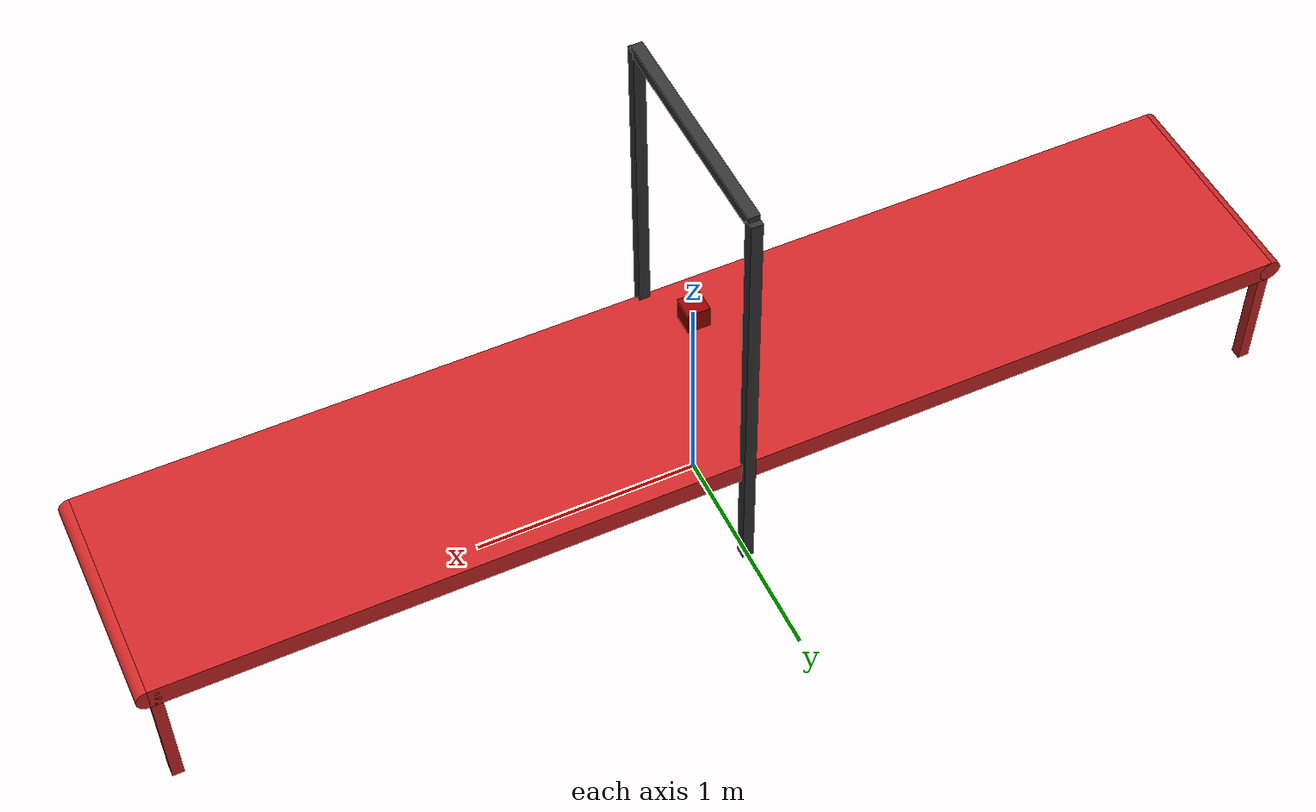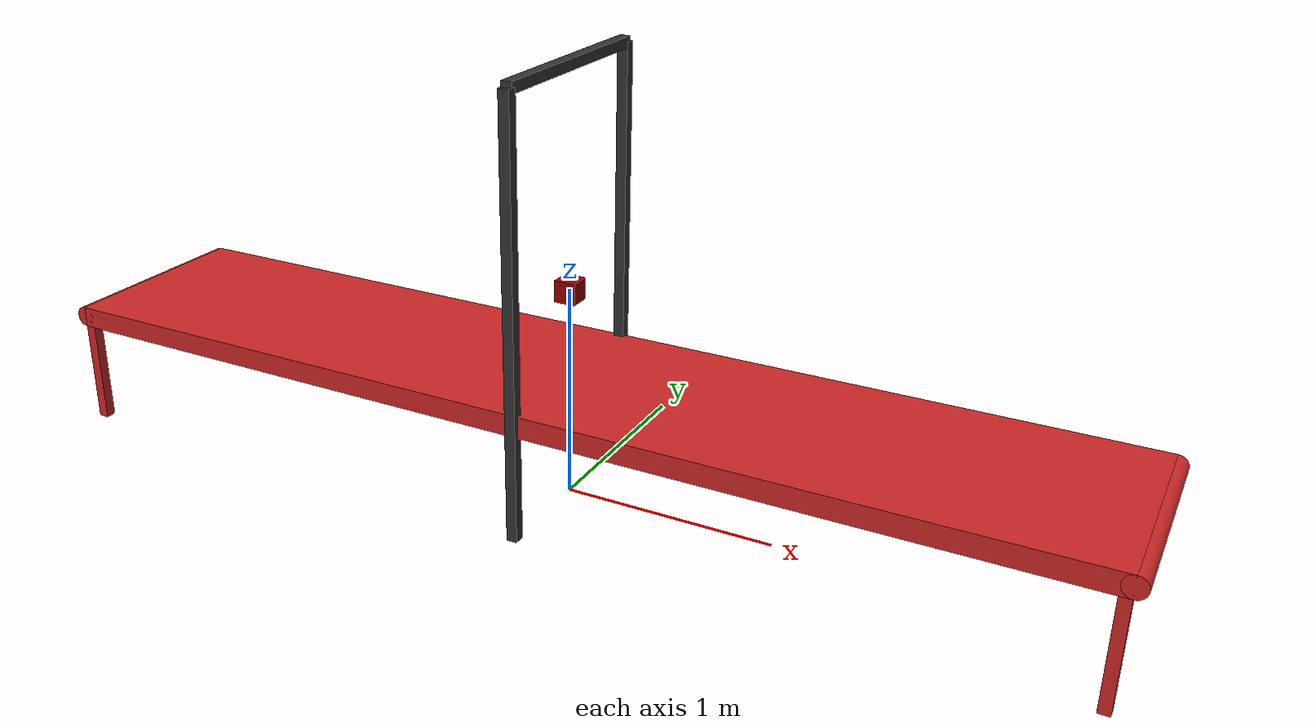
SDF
<sdf version="1.7">
 <world name="default">
  <physics name="4ms" type="ignored">
   <max_step_size>0.004</max_step_size>
   <real_time_factor>1.0</real_time_factor>
  </physics>
  <plugin filename="gz-sim-physics-system" name="gz::sim::systems::Physics"/>
  <plugin filename="gz-sim-sensors-system" name="gz::sim::systems::Sensors">
   <render_engine>ogre</render_engine>
  </plugin>
  <plugin filename="gz-sim-user-commands-system" name="gz::sim::systems::UserCommands"/>
  <plugin filename="gz-sim-scene-broadcaster-system" name="gz::sim::systems::SceneBroadcaster"/>
  <scene><ambient>1.0 1.0 1.0</ambient><background>0.8 0.8 0.8</background></scene>
  <light type="directional" name="sun">
   <pose>0 0 10 0 0 0</pose>
   <diffuse>0.8 0.8 0.8 1</diffuse>
   <specular>0.8 0.8 0.8 1</specular>
   <attenuation>
    <range>1000</range>
    <constant>0.9</constant>
    <linear>0.01</linear>
    <quadratic>0.001</quadratic>
   </attenuation>
   <direction>-0.5 0.1 -0.9</direction>
  </light>
  <include><uri>model://textured_conveyor</uri></include>
  <include><uri>model://simple_conveyor_box</uri><pose>0 0 1.0 0 0 0</pose></include>
  <include>
   <uri>model://bracket</uri>
   <name>bracket</name>
   <pose>0 0 0.0 0 0 1.5707963267948966</pose>
   <static>true</static>
  </include>
  <joint name="bracket_camera_joint" type="fixed">
   <parent>bracket::horizontal_bar</parent>
   <child>realsense_d435::link</child>
  </joint>
  <joint name="bracket_lidar_joint" type="fixed">
   <parent>bracket::horizontal_bar</parent>
   <child>lidar_3d::link</child>
  </joint>
 </world>
</sdf>

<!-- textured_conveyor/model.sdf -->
<?xml version="1.0" ?>
<sdf version="1.7">
  <model name="textured_conveyor">
    <static>1</static>
    <link name="base_link">
      <pose relative_to="__model__">0 0 0 0 0 0</pose>
      <inertial>
        <mass>1000.0</mass>
        <inertia>
          <ixx>84.16666666666666</ixx>
          <ixy>0</ixy>
          <ixz>0</ixz>
          <iyy>2084.1666666666665</iyy>
          <iyz>1.5e-05</iyz>
          <izz>2166.6666666666665</izz>
        </inertia>
      </inertial>
      <collision name="main_collision">
        <pose relative_to="base_link">0 0 0.55 0 0 0</pose>
        <geometry>
          <box>
            <size>5.0 1.0 0.1</size>
          </box>
        </geometry>
        <surface>
          <friction>
            <ode>
              <mu>0.7</mu>
              <mu2>150</mu2>
              <fdir1>0 1 0</fdir1>
            </ode>
          </friction>
        </surface>
      </collision>
      <visual name="main_visual">
        <pose relative_to="base_link">0 0 0.55 0 0 0</pose>
        <geometry>
          <box>
            <size>5.0 1.0 0.1</size>
          </box>
        </geometry>
        <material>
          <diffuse>1.0 1.0 1.0</diffuse>
          <specular>1.0 1.0 1.0</specular>
          <pbr>
            <metal>
              <albedo_map>model://textured_conveyor/materials/textures/Leather032_1K-PNG_Color.png</albedo_map>
              <normal_map>model://textured_conveyor/materials/textures/Leather032_1K-PNG_NormalDX.png</normal_map>
              <metalness_map>model://textured_conveyor/materials/textures/Leather032_1K-PNG_Color.png</metalness_map>
              <roughness_map>model://textured_conveyor/materials/textures/Leather032_1K-PNG_Roughness.png</roughness_map>
            </metal>
          </pbr>
          <script>
            <uri>model://textured_conveyor/materials/scripts/</uri>
            <uri>model://textured_conveyor/materials/textures/</uri>
            <name>UrbanTile/textured_conveyor_Belt</name>
          </script>
        </material>
      </visual>
      <collision name="collision_1">
        <pose relative_to="base_link">2.5 0 0.55 -1.570796327 0 0</pose>
        <geometry>
          <cylinder>
            <length>1.0</length>
            <radius>0.05</radius>
          </cylinder>
        </geometry>
        <surface>
          <friction>
            <ode>
              <mu>0.7</mu>
              <mu2>150</mu2>
              <fdir1>0 1 0</fdir1>
            </ode>
          </friction>
        </surface>
      </collision>
      <visual name="visual_1">
        <pose relative_to="base_link">2.5 0 0.55 -1.570796327 0 0</pose>
        <geometry>
          <cylinder>
            <length>1.0</length>
            <radius>0.05</radius>
          </cylinder>
        </geometry>
        <material>
          <diffuse>1.0 1.0 1.0</diffuse>
          <specular>1.0 1.0 1.0</specular>
          <pbr>
            <metal>
              <albedo_map>model://textured_conveyor/materials/textures/Metal055A_1K-PNG_Color.png</albedo_map>
              <metalness_map>model://textured_conveyor/materials/textures/Metal055A_1K-PNG_Color.png</metalness_map>
              <roughness_map>model://textured_conveyor/materials/textures/Metal055A_1K-PNG_Roughness.png</roughness_map>
            </metal>
          </pbr>
          <script>
            <uri>model://textured_conveyor/materials/scripts/</uri>
            <uri>model://textured_conveyor/materials/textures/</uri>
            <name>UrbanTile/textured_conveyor_Roller</name>
          </script>
        </material>
      </visual>
      <collision name="collision_2">
        <pose relative_to="base_link">-2.5 0 0.55 -1.570796327 0 0</pose>
        <geometry>
          <cylinder>
            <length>1.0</length>
            <radius>0.05</radius>
          </cylinder>
        </geometry>
        <surface>
          <friction>
            <ode>
              <mu>0.7</mu>
              <mu2>150</mu2>
              <fdir1>0 1 0</fdir1>
            </ode>
          </friction>
        </surface>
      </collision>
      <visual name="visual_2">
        <pose relative_to="base_link">-2.5 0 0.55 -1.570796327 0 0</pose>
        <geometry>
          <cylinder>
            <length>1.0</length>
            <radius>0.05</radius>
          </cylinder>
        </geometry>
        <material>
          <diffuse>1.0 1.0 1.0</diffuse>
          <specular>1.0 1.0 1.0</specular>
          <pbr>
            <metal>
              <albedo_map>model://textured_conveyor/materials/textures/Metal055A_1K-PNG_Color.png</albedo_map>
              <metalness_map>model://textured_conveyor/materials/textures/Metal055A_1K-PNG_Color.png</metalness_map>
              <roughness_map>model://textured_conveyor/materials/textures/Metal055A_1K-PNG_Roughness.png</roughness_map>
            </metal>
          </pbr>
          <script>
            <uri>model://textured_conveyor/materials/scripts/</uri>
            <uri>model://textured_conveyor/materials/textures/</uri>
            <name>UrbanTile/textured_conveyor_Roller</name>
          </script>
        </material>
      </visual>
      <collision name="leg_collision_0">
        <pose relative_to="base_link">2.475 0.475 0.25 0 0 0</pose>
        <geometry>
          <box>
            <size>0.05 0.05 0.5</size>
          </box>
        </geometry>
      </collision>
      <visual name="leg_visual_0">
        <pose relative_to="base_link">2.475 0.475 0.25 0 0 0</pose>
        <geometry>
          <box>
            <size>0.05 0.05 0.5</size>
          </box>
        </geometry>
        <material>
          <diffuse>1.0 1.0 1.0</diffuse>
          <specular>1.0 1.0 1.0</specular>
          <pbr>
            <metal>
              <albedo_map>model://textured_conveyor/materials/textures/Metal055A_1K-PNG_Color.png</albedo_map>
              <metalness_map>model://textured_conveyor/materials/textures/Metal055A_1K-PNG_Color.png</metalness_map>
              <roughness_map>model://textured_conveyor/materials/textures/Metal055A_1K-PNG_Roughness.png</roughness_map>
            </metal>
          </pbr>
          <script>
            <uri>model://textured_conveyor/materials/scripts/</uri>
            <uri>model://textured_conveyor/materials/textures/</uri>
            <name>UrbanTile/textured_conveyor_Leg</name>
          </script>
        </material>
      </visual>
      <collision name="leg_collision_1">
        <pose relative_to="base_link">2.475 -0.475 0.25 0 0 0</pose>
        <geometry>
          <box>
            <size>0.05 0.05 0.5</size>
          </box>
        </geometry>
      </collision>
      <visual name="leg_visual_1">
        <pose relative_to="base_link">2.475 -0.475 0.25 0 0 0</pose>
        <geometry>
          <box>
            <size>0.05 0.05 0.5</size>
          </box>
        </geometry>
        <material>
          <diffuse>1.0 1.0 1.0</diffuse>
          <specular>1.0 1.0 1.0</specular>
          <pbr>
            <metal>
              <albedo_map>model://textured_conveyor/materials/textures/Metal055A_1K-PNG_Color.png</albedo_map>
              <metalness_map>model://textured_conveyor/materials/textures/Metal055A_1K-PNG_Color.png</metalness_map>
              <roughness_map>model://textured_conveyor/materials/textures/Metal055A_1K-PNG_Roughness.png</roughness_map>
            </metal>
          </pbr>
          <script>
            <uri>model://textured_conveyor/materials/scripts/</uri>
            <uri>model://textured_conveyor/materials/textures/</uri>
            <name>UrbanTile/textured_conveyor_Leg</name>
          </script>
        </material>
      </visual>
      <collision name="leg_collision_2">
        <pose relative_to="base_link">-2.475 0.475 0.25 0 0 0</pose>
        <geometry>
          <box>
            <size>0.05 0.05 0.5</size>
          </box>
        </geometry>
      </collision>
      <visual name="leg_visual_2">
        <pose relative_to="base_link">-2.475 0.475 0.25 0 0 0</pose>
        <geometry>
          <box>
            <size>0.05 0.05 0.5</size>
          </box>
        </geometry>
        <material>
          <diffuse>1.0 1.0 1.0</diffuse>
          <specular>1.0 1.0 1.0</specular>
          <pbr>
            <metal>
              <albedo_map>model://textured_conveyor/materials/textures/Metal055A_1K-PNG_Color.png</albedo_map>
              <metalness_map>model://textured_conveyor/materials/textures/Metal055A_1K-PNG_Color.png</metalness_map>
              <roughness_map>model://textured_conveyor/materials/textures/Metal055A_1K-PNG_Roughness.png</roughness_map>
            </metal>
          </pbr>
          <script>
            <uri>model://textured_conveyor/materials/scripts/</uri>
            <uri>model://textured_conveyor/materials/textures/</uri>
            <name>UrbanTile/textured_conveyor_Leg</name>
          </script>
        </material>
      </visual>
      <collision name="leg_collision_3">
        <pose relative_to="base_link">-2.475 -0.475 0.25 0 0 0</pose>
        <geometry>
          <box>
            <size>0.05 0.05 0.5</size>
          </box>
        </geometry>
      </collision>
      <visual name="leg_visual_3">
        <pose relative_to="base_link">-2.475 -0.475 0.25 0 0 0</pose>
        <geometry>
          <box>
            <size>0.05 0.05 0.5</size>
          </box>
        </geometry>
        <material>
          <diffuse>1.0 1.0 1.0</diffuse>
          <specular>1.0 1.0 1.0</specular>
          <pbr>
            <metal>
              <albedo_map>model://textured_conveyor/materials/textures/Metal055A_1K-PNG_Color.png</albedo_map>
              <metalness_map>model://textured_conveyor/materials/textures/Metal055A_1K-PNG_Color.png</metalness_map>
              <roughness_map>model://textured_conveyor/materials/textures/Metal055A_1K-PNG_Roughness.png</roughness_map>
            </metal>
          </pbr>
          <script>
            <uri>model://textured_conveyor/materials/scripts/</uri>
            <uri>model://textured_conveyor/materials/textures/</uri>
            <name>UrbanTile/textured_conveyor_Leg</name>
          </script>
        </material>
      </visual>
      <gravity>1</gravity>
      <kinematic>0</kinematic>
    </link>

    <!-- Track Controller -->

    <!-- Documentation https://gazebosim.org/api/sim/8/classgz_1_1sim_1_1systems_1_1TrackController.html -->

    <plugin filename="gz-sim-track-controller-system" name="gz::sim::systems::TrackController">
      <link>base_link</link>
      <track_orientation>0 0 0</track_orientation>
      <odometry_publish_frequency>1</odometry_publish_frequency>
      <velocity_topic>/conveyor/cmd_vel</velocity_topic>
    </plugin>
    <plugin filename="gz-sim-triggered-publisher-system" name="gz::sim::systems::TriggeredPublisher">
      <input type="gz.msgs.Int32" topic="/keyboard/keypress">
        <match field="data">87</match>
      </input>
      <output type="gz.msgs.Double" topic="/conveyor/cmd_vel">
        data: 1.0
      </output>
    </plugin>
    <plugin filename="gz-sim-triggered-publisher-system" name="gz::sim::systems::TriggeredPublisher">
      <input type="gz.msgs.Int32" topic="/keyboard/keypress">
        <match field="data">88</match>
      </input>
      <output type="gz.msgs.Double" topic="/conveyor/cmd_vel">
        data: -1.0
      </output>
    </plugin>
    <plugin filename="gz-sim-triggered-publisher-system" name="gz::sim::systems::TriggeredPublisher">
      <input type="gz.msgs.Int32" topic="/keyboard/keypress">
        <match field="data">83</match>
      </input>
      <output type="gz.msgs.Double" topic="/conveyor/cmd_vel">
        data: 0.0
      </output>
    </plugin>
  </model>
</sdf>

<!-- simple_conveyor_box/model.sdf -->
<sdf version="1.7">
  <model name="simple_conveyor_box">
    <pose>0 0 1 0 0 0</pose>
    <link name="base_link">
      <inertial>
        <mass>1.06</mass>
        <inertia>
          <ixx>0.01</ixx>
          <ixy>0</ixy>
          <ixz>0</ixz>
          <iyy>0.01</iyy>
          <iyz>0</iyz>
          <izz>0.01</izz>
        </inertia>
      </inertial>
      <visual name="main_visual">
        <pose>0 0 0 0 0 0</pose>
        <geometry>
          <box>
            <size>0.1 0.1 0.1</size>
          </box>
        </geometry>
        <material>
          <ambient>0.60 0.0 0.0 1</ambient>
          <diffuse>0.60 0.0 0.0 1</diffuse>
          <specular>0.8 0.8 0.8 1</specular>
        </material>
      </visual>
      <collision name="main_collision">
        <pose>0 0 0 0 0 0</pose>
        <geometry>
          <box>
            <size>0.1 0.1 0.1</size>
          </box>
        </geometry>
      </collision>
    </link>
  </model>
</sdf>

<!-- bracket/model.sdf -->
<sdf version="1.7">
  <model name="bracket">
    <!-- Horizontal connecting bar (now the parent) -->
    <link name="horizontal_bar">
      <pose>0 0 2.0 0 0 0</pose>
      <visual name="horizontal_bar_visual">
        <geometry>
          <box>
            <size>1.0 0.05 0.05</size>
          </box>
        </geometry>
        <material>
          <ambient>0.1 0.1 0.1 1</ambient>
          <diffuse>0.2 0.2 0.2 1</diffuse>
          <specular>0.3 0.3 0.3 1</specular>
        </material>
      </visual>
      <collision name="horizontal_bar_collision">
        <geometry>
          <box>
            <size>1.0 0.05 0.05</size>
          </box>
        </geometry>
      </collision>
      <inertial>
        <mass>0.5</mass>
        <inertia>
          <ixx>0.00104</ixx>
          <iyy>0.0417</iyy>
          <izz>0.0417</izz>
          <ixy>0</ixy>
          <ixz>0</ixz>
          <iyz>0</iyz>
        </inertia>
      </inertial>
    </link>

    <!-- Left vertical bar -->
    <link name="left_bar">
      <pose>-0.5 0 1.0 0 0 0</pose>
      <visual name="left_bar_visual">
        <geometry>
          <box>
            <size>0.05 0.05 2.0</size>
          </box>
        </geometry>
        <material>
          <ambient>0.1 0.1 0.1 1</ambient>
          <diffuse>0.2 0.2 0.2 1</diffuse>
          <specular>0.3 0.3 0.3 1</specular>
        </material>
      </visual>
      <collision name="left_bar_collision">
        <geometry>
          <box>
            <size>0.05 0.05 2.0</size>
          </box>
        </geometry>
      </collision>
      <inertial>
        <mass>1.0</mass>
        <inertia>
          <ixx>0.335</ixx>
          <iyy>0.335</iyy>
          <izz>0.00208</izz>
          <ixy>0</ixy>
          <ixz>0</ixz>
          <iyz>0</iyz>
        </inertia>
      </inertial>
    </link>

    <!-- Right vertical bar -->
    <link name="right_bar">
      <pose>0.5 0 1.0 0 0 0</pose>
      <visual name="right_bar_visual">
        <geometry>
          <box>
            <size>0.05 0.05 2.0</size>
          </box>
        </geometry>
        <material>
          <ambient>0.1 0.1 0.1 1</ambient>
          <diffuse>0.2 0.2 0.2 1</diffuse>
          <specular>0.3 0.3 0.3 1</specular>
        </material>
      </visual>
      <collision name="right_bar_collision">
        <geometry>
          <box>
            <size>0.05 0.05 2.0</size>
          </box>
        </geometry>
      </collision>
      <inertial>
        <mass>1.0</mass>
        <inertia>
          <ixx>0.335</ixx>
          <iyy>0.335</iyy>
          <izz>0.00208</izz>
          <ixy>0</ixy>
          <ixz>0</ixz>
          <iyz>0</iyz>
        </inertia>
      </inertial>
    </link>

    <!-- Joint between horizontal bar and left bar -->
    <joint name="horizontal_to_left_joint" type="fixed">
      <parent>horizontal_bar</parent>
      <child>left_bar</child>
      <pose>0 0 -1.0 0 0 0</pose>
    </joint>

    <!-- Joint between horizontal bar and right bar -->
    <joint name="horizontal_to_right_joint" type="fixed">
      <parent>horizontal_bar</parent>
      <child>right_bar</child>
      <pose>0 0 -1.0 0 0 0</pose>
    </joint>
  </model>
</sdf>
